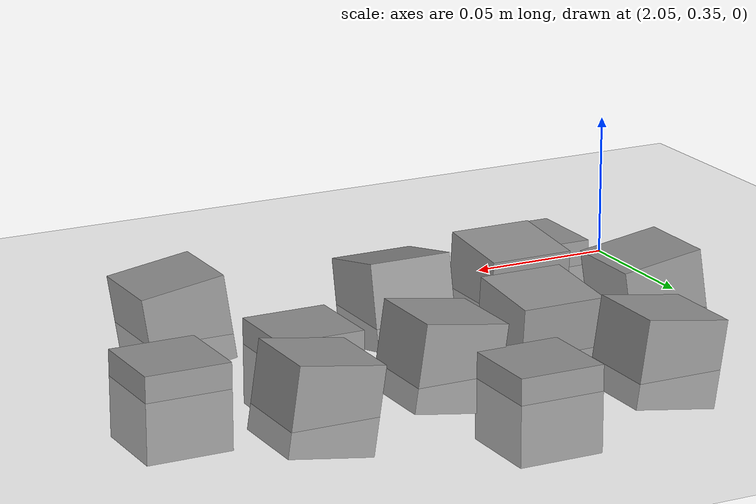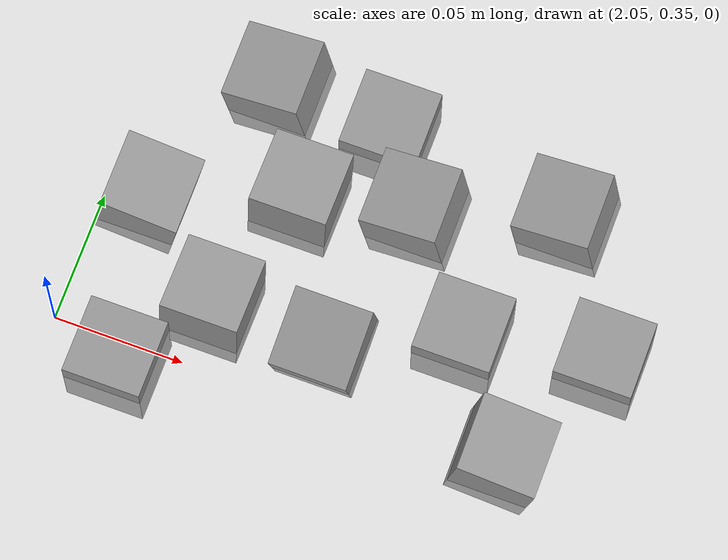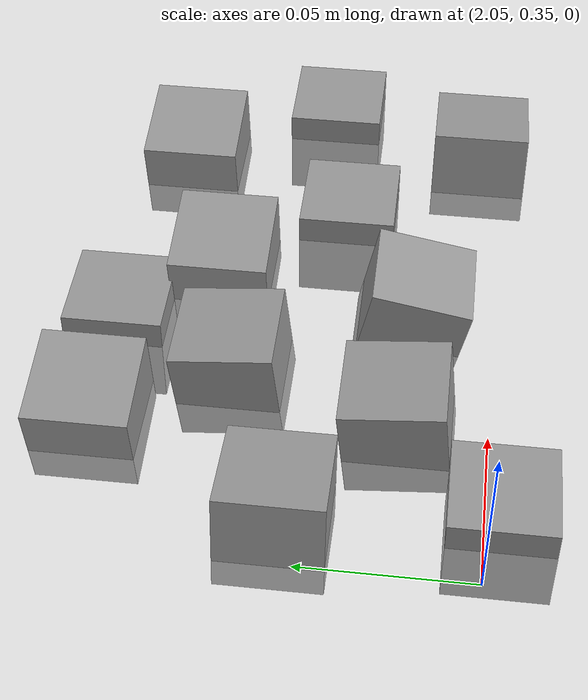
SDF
<sdf version="1.7">
 <world name="default">
  <model name="ground_plane">
   <static>1</static>
   <link name="link">
    <collision name="collision">
     <geometry><plane><normal>0 0 1</normal><size>100 100</size></plane></geometry>
     <surface><friction><ode><mu>100</mu><mu2>50</mu2></ode></friction></surface>
    </collision>
    <visual name="visual">
     <cast_shadows>0</cast_shadows>
     <geometry><plane><normal>0 0 1</normal><size>100 100</size></plane></geometry>
     <material>
      <script><uri>file://media/materials/scripts/gazebo.material</uri><name>Gazebo/Grey</name></script>
     </material>
    </visual>
   </link>
  </model>
  <model name="stone_road_3">
   <link name="link_0_clone_2_clone_1">
    <inertial>
     <mass>1</mass>
     <inertia>
      <ixx>0.166667</ixx>
      <ixy>0</ixy>
      <ixz>0</ixz>
      <iyy>0.166667</iyy>
      <iyz>0</iyz>
      <izz>0.166667</izz>
     </inertia>
    </inertial>
    <pose>0.041447 0.006316 0.003778 0 0.15 0</pose>
    <kinematic>1</kinematic>
    <visual name="visual">
     <geometry><box><size>0.03 0.03 0.03</size></box></geometry>
     <material>
      <lighting>1</lighting>
      <script><uri>file://media/materials/scripts/gazebo.material</uri><name>Gazebo/Grey</name></script>
      <shader type="pixel"><normal_map>__default__</normal_map></shader>
      <ambient>0.3 0.3 0.3 1</ambient>
      <diffuse>0.7 0.7 0.7 1</diffuse>
      <specular>0.01 0.01 0.01 1</specular>
      <emissive>0 0 0 1</emissive>
     </material>
    </visual>
    <collision name="collision">
     <geometry><box><size>0.03 0.03 0.03</size></box></geometry>
     <surface>
      <friction>
       <ode><mu>1</mu><mu2>1</mu2><fdir1>0 0 0</fdir1><slip1>0</slip1><slip2>0</slip2></ode>
       <torsional>
        <coefficient>1</coefficient>
        <patch_radius>0</patch_radius>
        <surface_radius>0</surface_radius>
        <use_patch_radius>1</use_patch_radius>
        <ode><slip>0</slip></ode>
       </torsional>
      </friction>
      <bounce><restitution_coefficient>0</restitution_coefficient><threshold>1e+06</threshold></bounce>
      <contact>
       <collide_without_contact>0</collide_without_contact>
       <collide_without_contact_bitmask>1</collide_without_contact_bitmask>
       <collide_bitmask>1</collide_bitmask>
       <ode>
        <soft_cfm>0</soft_cfm>
        <soft_erp>0.2</soft_erp>
        <kp>1e+13</kp>
        <kd>1</kd>
        <max_vel>0.01</max_vel>
        <min_depth>0</min_depth>
       </ode>
       <bullet>
        <split_impulse>1</split_impulse>
        <split_impulse_penetration_threshold>-0.01</split_impulse_penetration_threshold>
        <soft_cfm>0</soft_cfm>
        <soft_erp>0.2</soft_erp>
        <kp>1e+13</kp>
        <kd>1</kd>
       </bullet>
      </contact>
     </surface>
    </collision>
   </link>
   <link name="link_0_clone_2_clone_2_clone">
    <inertial>
     <mass>1</mass>
     <inertia>
      <ixx>0.166667</ixx>
      <ixy>0</ixy>
      <ixz>0</ixz>
      <iyy>0.166667</iyy>
      <iyz>0</iyz>
      <izz>0.166667</izz>
     </inertia>
    </inertial>
    <pose>0.189059 0.051135 0.003778 0 -0.15 0</pose>
    <kinematic>1</kinematic>
    <visual name="visual">
     <geometry><box><size>0.03 0.03 0.03</size></box></geometry>
     <material>
      <lighting>1</lighting>
      <script><uri>file://media/materials/scripts/gazebo.material</uri><name>Gazebo/Grey</name></script>
      <shader type="pixel"><normal_map>__default__</normal_map></shader>
      <ambient>0.3 0.3 0.3 1</ambient>
      <diffuse>0.7 0.7 0.7 1</diffuse>
      <specular>0.01 0.01 0.01 1</specular>
      <emissive>0 0 0 1</emissive>
     </material>
    </visual>
    <collision name="collision">
     <geometry><box><size>0.03 0.03 0.03</size></box></geometry>
     <surface>
      <friction>
       <ode><mu>1</mu><mu2>1</mu2><fdir1>0 0 0</fdir1><slip1>0</slip1><slip2>0</slip2></ode>
       <torsional>
        <coefficient>1</coefficient>
        <patch_radius>0</patch_radius>
        <surface_radius>0</surface_radius>
        <use_patch_radius>1</use_patch_radius>
        <ode><slip>0</slip></ode>
       </torsional>
      </friction>
      <bounce><restitution_coefficient>0</restitution_coefficient><threshold>1e+06</threshold></bounce>
      <contact>
       <collide_without_contact>0</collide_without_contact>
       <collide_without_contact_bitmask>1</collide_without_contact_bitmask>
       <collide_bitmask>1</collide_bitmask>
       <ode>
        <soft_cfm>0</soft_cfm>
        <soft_erp>0.2</soft_erp>
        <kp>1e+13</kp>
        <kd>1</kd>
        <max_vel>0.01</max_vel>
        <min_depth>0</min_depth>
       </ode>
       <bullet>
        <split_impulse>1</split_impulse>
        <split_impulse_penetration_threshold>-0.01</split_impulse_penetration_threshold>
        <soft_cfm>0</soft_cfm>
        <soft_erp>0.2</soft_erp>
        <kp>1e+13</kp>
        <kd>1</kd>
       </bullet>
      </contact>
     </surface>
    </collision>
   </link>
   <link name="link_0_clone_2_clone_2_clone_13_clone_clone_0">
    <inertial>
     <mass>1</mass>
     <inertia>
      <ixx>0.166667</ixx>
      <ixy>0</ixy>
      <ixz>0</ixz>
      <iyy>0.166667</iyy>
      <iyz>0</iyz>
      <izz>0.166667</izz>
     </inertia>
    </inertial>
    <pose>0.094072 0.02539 0.003778 -0.1 0 0</pose>
    <kinematic>1</kinematic>
    <visual name="visual">
     <geometry><box><size>0.03 0.03 0.03</size></box></geometry>
     <material>
      <lighting>1</lighting>
      <script><uri>file://media/materials/scripts/gazebo.material</uri><name>Gazebo/Grey</name></script>
      <shader type="pixel"><normal_map>__default__</normal_map></shader>
      <ambient>0.3 0.3 0.3 1</ambient>
      <diffuse>0.7 0.7 0.7 1</diffuse>
      <specular>0.01 0.01 0.01 1</specular>
      <emissive>0 0 0 1</emissive>
     </material>
    </visual>
    <collision name="collision">
     <geometry><box><size>0.03 0.03 0.03</size></box></geometry>
     <surface>
      <friction>
       <ode><mu>1</mu><mu2>1</mu2><fdir1>0 0 0</fdir1><slip1>0</slip1><slip2>0</slip2></ode>
       <torsional>
        <coefficient>1</coefficient>
        <patch_radius>0</patch_radius>
        <surface_radius>0</surface_radius>
        <use_patch_radius>1</use_patch_radius>
        <ode><slip>0</slip></ode>
       </torsional>
      </friction>
      <bounce><restitution_coefficient>0</restitution_coefficient><threshold>1e+06</threshold></bounce>
      <contact>
       <collide_without_contact>0</collide_without_contact>
       <collide_without_contact_bitmask>1</collide_without_contact_bitmask>
       <collide_bitmask>1</collide_bitmask>
       <ode>
        <soft_cfm>0</soft_cfm>
        <soft_erp>0.2</soft_erp>
        <kp>1e+13</kp>
        <kd>1</kd>
        <max_vel>0.01</max_vel>
        <min_depth>0</min_depth>
       </ode>
       <bullet>
        <split_impulse>1</split_impulse>
        <split_impulse_penetration_threshold>-0.01</split_impulse_penetration_threshold>
        <soft_cfm>0</soft_cfm>
        <soft_erp>0.2</soft_erp>
        <kp>1e+13</kp>
        <kd>1</kd>
       </bullet>
      </contact>
     </surface>
    </collision>
   </link>
   <link name="link_0_clone_2_clone_2_clone_13_clone_clone_16_clone_13">
    <inertial>
     <mass>1</mass>
     <inertia>
      <ixx>0.166667</ixx>
      <ixy>0</ixy>
      <ixz>0</ixz>
      <iyy>0.166667</iyy>
      <iyz>0</iyz>
      <izz>0.166667</izz>
     </inertia>
    </inertial>
    <pose>0.168013 -0.00203 -0.006222 0 -0 0</pose>
    <kinematic>1</kinematic>
    <visual name="visual">
     <geometry><box><size>0.03 0.03 0.03</size></box></geometry>
     <material>
      <lighting>1</lighting>
      <script><uri>file://media/materials/scripts/gazebo.material</uri><name>Gazebo/Grey</name></script>
      <shader type="pixel"><normal_map>__default__</normal_map></shader>
      <ambient>0.3 0.3 0.3 1</ambient>
      <diffuse>0.7 0.7 0.7 1</diffuse>
      <specular>0.01 0.01 0.01 1</specular>
      <emissive>0 0 0 1</emissive>
     </material>
    </visual>
    <collision name="collision">
     <geometry><box><size>0.03 0.03 0.03</size></box></geometry>
     <surface>
      <friction>
       <ode><mu>1</mu><mu2>1</mu2><fdir1>0 0 0</fdir1><slip1>0</slip1><slip2>0</slip2></ode>
       <torsional>
        <coefficient>1</coefficient>
        <patch_radius>0</patch_radius>
        <surface_radius>0</surface_radius>
        <use_patch_radius>1</use_patch_radius>
        <ode><slip>0</slip></ode>
       </torsional>
      </friction>
      <bounce><restitution_coefficient>0</restitution_coefficient><threshold>1e+06</threshold></bounce>
      <contact>
       <collide_without_contact>0</collide_without_contact>
       <collide_without_contact_bitmask>1</collide_without_contact_bitmask>
       <collide_bitmask>1</collide_bitmask>
       <ode>
        <soft_cfm>0</soft_cfm>
        <soft_erp>0.2</soft_erp>
        <kp>1e+13</kp>
        <kd>1</kd>
        <max_vel>0.01</max_vel>
        <min_depth>0</min_depth>
       </ode>
       <bullet>
        <split_impulse>1</split_impulse>
        <split_impulse_penetration_threshold>-0.01</split_impulse_penetration_threshold>
        <soft_cfm>0</soft_cfm>
        <soft_erp>0.2</soft_erp>
        <kp>1e+13</kp>
        <kd>1</kd>
       </bullet>
      </contact>
     </surface>
    </collision>
   </link>
   <link name="link_0_clone_2_clone_2_clone_13_clone_clone_16_clone_14">
    <inertial>
     <mass>1</mass>
     <inertia>
      <ixx>0.166667</ixx>
      <ixy>0</ixy>
      <ixz>0</ixz>
      <iyy>0.166667</iyy>
      <iyz>0</iyz>
      <izz>0.166667</izz>
     </inertia>
    </inertial>
    <pose>0.051911 -0.054424 -0.006222 0 -0 0</pose>
    <kinematic>1</kinematic>
    <visual name="visual">
     <geometry><box><size>0.03 0.03 0.03</size></box></geometry>
     <material>
      <lighting>1</lighting>
      <script><uri>file://media/materials/scripts/gazebo.material</uri><name>Gazebo/Grey</name></script>
      <shader type="pixel"><normal_map>__default__</normal_map></shader>
      <ambient>0.3 0.3 0.3 1</ambient>
      <diffuse>0.7 0.7 0.7 1</diffuse>
      <specular>0.01 0.01 0.01 1</specular>
      <emissive>0 0 0 1</emissive>
     </material>
    </visual>
    <collision name="collision">
     <geometry><box><size>0.03 0.03 0.03</size></box></geometry>
     <surface>
      <friction>
       <ode><mu>1</mu><mu2>1</mu2><fdir1>0 0 0</fdir1><slip1>0</slip1><slip2>0</slip2></ode>
       <torsional>
        <coefficient>1</coefficient>
        <patch_radius>0</patch_radius>
        <surface_radius>0</surface_radius>
        <use_patch_radius>1</use_patch_radius>
        <ode><slip>0</slip></ode>
       </torsional>
      </friction>
      <bounce><restitution_coefficient>0</restitution_coefficient><threshold>1e+06</threshold></bounce>
      <contact>
       <collide_without_contact>0</collide_without_contact>
       <collide_without_contact_bitmask>1</collide_without_contact_bitmask>
       <collide_bitmask>1</collide_bitmask>
       <ode>
        <soft_cfm>0</soft_cfm>
        <soft_erp>0.2</soft_erp>
        <kp>1e+13</kp>
        <kd>1</kd>
        <max_vel>0.01</max_vel>
        <min_depth>0</min_depth>
       </ode>
       <bullet>
        <split_impulse>1</split_impulse>
        <split_impulse_penetration_threshold>-0.01</split_impulse_penetration_threshold>
        <soft_cfm>0</soft_cfm>
        <soft_erp>0.2</soft_erp>
        <kp>1e+13</kp>
        <kd>1</kd>
       </bullet>
      </contact>
     </surface>
    </collision>
   </link>
   <link name="link_0_clone_2_clone_2_clone_13_clone_clone_16_clone_19">
    <inertial>
     <mass>1</mass>
     <inertia>
      <ixx>0.166667</ixx>
      <ixy>0</ixy>
      <ixz>0</ixz>
      <iyy>0.166667</iyy>
      <iyz>0</iyz>
      <izz>0.166667</izz>
     </inertia>
    </inertial>
    <pose>0.219442 0.006622 -0.006222 0 -0 0</pose>
    <kinematic>1</kinematic>
    <visual name="visual">
     <geometry><box><size>0.03 0.03 0.03</size></box></geometry>
     <material>
      <lighting>1</lighting>
      <script><uri>file://media/materials/scripts/gazebo.material</uri><name>Gazebo/Grey</name></script>
      <shader type="pixel"><normal_map>__default__</normal_map></shader>
      <ambient>0.3 0.3 0.3 1</ambient>
      <diffuse>0.7 0.7 0.7 1</diffuse>
      <specular>0.01 0.01 0.01 1</specular>
      <emissive>0 0 0 1</emissive>
     </material>
    </visual>
    <collision name="collision">
     <geometry><box><size>0.03 0.03 0.03</size></box></geometry>
     <surface>
      <friction>
       <ode><mu>1</mu><mu2>1</mu2><fdir1>0 0 0</fdir1><slip1>0</slip1><slip2>0</slip2></ode>
       <torsional>
        <coefficient>1</coefficient>
        <patch_radius>0</patch_radius>
        <surface_radius>0</surface_radius>
        <use_patch_radius>1</use_patch_radius>
        <ode><slip>0</slip></ode>
       </torsional>
      </friction>
      <bounce><restitution_coefficient>0</restitution_coefficient><threshold>1e+06</threshold></bounce>
      <contact>
       <collide_without_contact>0</collide_without_contact>
       <collide_without_contact_bitmask>1</collide_without_contact_bitmask>
       <collide_bitmask>1</collide_bitmask>
       <ode>
        <soft_cfm>0</soft_cfm>
        <soft_erp>0.2</soft_erp>
        <kp>1e+13</kp>
        <kd>1</kd>
        <max_vel>0.01</max_vel>
        <min_depth>0</min_depth>
       </ode>
       <bullet>
        <split_impulse>1</split_impulse>
        <split_impulse_penetration_threshold>-0.01</split_impulse_penetration_threshold>
        <soft_cfm>0</soft_cfm>
        <soft_erp>0.2</soft_erp>
        <kp>1e+13</kp>
        <kd>1</kd>
       </bullet>
      </contact>
     </surface>
    </collision>
   </link>
   <link name="link_0_clone_2_clone_2_clone_13_clone_clone_16_clone_20">
    <inertial>
     <mass>1</mass>
     <inertia>
      <ixx>0.166667</ixx>
      <ixy>0</ixy>
      <ixz>0</ixz>
      <iyy>0.166667</iyy>
      <iyz>0</iyz>
      <izz>0.166667</izz>
     </inertia>
    </inertial>
    <pose>0.115763 0.063063 -0.006222 0 -0 0</pose>
    <kinematic>1</kinematic>
    <visual name="visual">
     <geometry><box><size>0.03 0.03 0.03</size></box></geometry>
     <material>
      <lighting>1</lighting>
      <script><uri>file://media/materials/scripts/gazebo.material</uri><name>Gazebo/Grey</name></script>
      <shader type="pixel"><normal_map>__default__</normal_map></shader>
      <ambient>0.3 0.3 0.3 1</ambient>
      <diffuse>0.7 0.7 0.7 1</diffuse>
      <specular>0.01 0.01 0.01 1</specular>
      <emissive>0 0 0 1</emissive>
     </material>
    </visual>
    <collision name="collision">
     <geometry><box><size>0.03 0.03 0.03</size></box></geometry>
     <surface>
      <friction>
       <ode><mu>1</mu><mu2>1</mu2><fdir1>0 0 0</fdir1><slip1>0</slip1><slip2>0</slip2></ode>
       <torsional>
        <coefficient>1</coefficient>
        <patch_radius>0</patch_radius>
        <surface_radius>0</surface_radius>
        <use_patch_radius>1</use_patch_radius>
        <ode><slip>0</slip></ode>
       </torsional>
      </friction>
      <bounce><restitution_coefficient>0</restitution_coefficient><threshold>1e+06</threshold></bounce>
      <contact>
       <collide_without_contact>0</collide_without_contact>
       <collide_without_contact_bitmask>1</collide_without_contact_bitmask>
       <collide_bitmask>1</collide_bitmask>
       <ode>
        <soft_cfm>0</soft_cfm>
        <soft_erp>0.2</soft_erp>
        <kp>1e+13</kp>
        <kd>1</kd>
        <max_vel>0.01</max_vel>
        <min_depth>0</min_depth>
       </ode>
       <bullet>
        <split_impulse>1</split_impulse>
        <split_impulse_penetration_threshold>-0.01</split_impulse_penetration_threshold>
        <soft_cfm>0</soft_cfm>
        <soft_erp>0.2</soft_erp>
        <kp>1e+13</kp>
        <kd>1</kd>
       </bullet>
      </contact>
     </surface>
    </collision>
   </link>
   <link name="link_0_clone_2_clone_2_clone_13_clone_clone_4">
    <inertial>
     <mass>1</mass>
     <inertia>
      <ixx>0.166667</ixx>
      <ixy>0</ixy>
      <ixz>0</ixz>
      <iyy>0.166667</iyy>
      <iyz>0</iyz>
      <izz>0.166667</izz>
     </inertia>
    </inertial>
    <pose>0.078198 -0.024053 0.003778 -0.1 0 0</pose>
    <kinematic>1</kinematic>
    <visual name="visual">
     <geometry><box><size>0.03 0.03 0.03</size></box></geometry>
     <material>
      <lighting>1</lighting>
      <script><uri>file://media/materials/scripts/gazebo.material</uri><name>Gazebo/Grey</name></script>
      <shader type="pixel"><normal_map>__default__</normal_map></shader>
      <ambient>0.3 0.3 0.3 1</ambient>
      <diffuse>0.7 0.7 0.7 1</diffuse>
      <specular>0.01 0.01 0.01 1</specular>
      <emissive>0 0 0 1</emissive>
     </material>
    </visual>
    <collision name="collision">
     <geometry><box><size>0.03 0.03 0.03</size></box></geometry>
     <surface>
      <friction>
       <ode><mu>1</mu><mu2>1</mu2><fdir1>0 0 0</fdir1><slip1>0</slip1><slip2>0</slip2></ode>
       <torsional>
        <coefficient>1</coefficient>
        <patch_radius>0</patch_radius>
        <surface_radius>0</surface_radius>
        <use_patch_radius>1</use_patch_radius>
        <ode><slip>0</slip></ode>
       </torsional>
      </friction>
      <bounce><restitution_coefficient>0</restitution_coefficient><threshold>1e+06</threshold></bounce>
      <contact>
       <collide_without_contact>0</collide_without_contact>
       <collide_without_contact_bitmask>1</collide_without_contact_bitmask>
       <collide_bitmask>1</collide_bitmask>
       <ode>
        <soft_cfm>0</soft_cfm>
        <soft_erp>0.2</soft_erp>
        <kp>1e+13</kp>
        <kd>1</kd>
        <max_vel>0.01</max_vel>
        <min_depth>0</min_depth>
       </ode>
       <bullet>
        <split_impulse>1</split_impulse>
        <split_impulse_penetration_threshold>-0.01</split_impulse_penetration_threshold>
        <soft_cfm>0</soft_cfm>
        <soft_erp>0.2</soft_erp>
        <kp>1e+13</kp>
        <kd>1</kd>
       </bullet>
      </contact>
     </surface>
    </collision>
   </link>
   <link name="link_0_clone_2_clone_2_clone_6">
    <inertial>
     <mass>1</mass>
     <inertia>
      <ixx>0.166667</ixx>
      <ixy>0</ixy>
      <ixz>0</ixz>
      <iyy>0.166667</iyy>
      <iyz>0</iyz>
      <izz>0.166667</izz>
     </inertia>
    </inertial>
    <pose>0.136141 0.034017 0.003778 0 -0.15 0</pose>
    <kinematic>1</kinematic>
    <visual name="visual">
     <geometry><box><size>0.03 0.03 0.03</size></box></geometry>
     <material>
      <lighting>1</lighting>
      <script><uri>file://media/materials/scripts/gazebo.material</uri><name>Gazebo/Grey</name></script>
      <shader type="pixel"><normal_map>__default__</normal_map></shader>
      <ambient>0.3 0.3 0.3 1</ambient>
      <diffuse>0.7 0.7 0.7 1</diffuse>
      <specular>0.01 0.01 0.01 1</specular>
      <emissive>0 0 0 1</emissive>
     </material>
    </visual>
    <collision name="collision">
     <geometry><box><size>0.03 0.03 0.03</size></box></geometry>
     <surface>
      <friction>
       <ode><mu>1</mu><mu2>1</mu2><fdir1>0 0 0</fdir1><slip1>0</slip1><slip2>0</slip2></ode>
       <torsional>
        <coefficient>1</coefficient>
        <patch_radius>0</patch_radius>
        <surface_radius>0</surface_radius>
        <use_patch_radius>1</use_patch_radius>
        <ode><slip>0</slip></ode>
       </torsional>
      </friction>
      <bounce><restitution_coefficient>0</restitution_coefficient><threshold>1e+06</threshold></bounce>
      <contact>
       <collide_without_contact>0</collide_without_contact>
       <collide_without_contact_bitmask>1</collide_without_contact_bitmask>
       <collide_bitmask>1</collide_bitmask>
       <ode>
        <soft_cfm>0</soft_cfm>
        <soft_erp>0.2</soft_erp>
        <kp>1e+13</kp>
        <kd>1</kd>
        <max_vel>0.01</max_vel>
        <min_depth>0</min_depth>
       </ode>
       <bullet>
        <split_impulse>1</split_impulse>
        <split_impulse_penetration_threshold>-0.01</split_impulse_penetration_threshold>
        <soft_cfm>0</soft_cfm>
        <soft_erp>0.2</soft_erp>
        <kp>1e+13</kp>
        <kd>1</kd>
       </bullet>
      </contact>
     </surface>
    </collision>
   </link>
   <link name="link_0_clone_2_clone_2_clone_9">
    <inertial>
     <mass>1</mass>
     <inertia>
      <ixx>0.166667</ixx>
      <ixy>0</ixy>
      <ixz>0</ixz>
      <iyy>0.166667</iyy>
      <iyz>0</iyz>
      <izz>0.166667</izz>
     </inertia>
    </inertial>
    <pose>0.071478 0.063212 0.003778 0 -0.15 0</pose>
    <kinematic>1</kinematic>
    <visual name="visual">
     <geometry><box><size>0.03 0.03 0.03</size></box></geometry>
     <material>
      <lighting>1</lighting>
      <script><uri>file://media/materials/scripts/gazebo.material</uri><name>Gazebo/Grey</name></script>
      <shader type="pixel"><normal_map>__default__</normal_map></shader>
      <ambient>0.3 0.3 0.3 1</ambient>
      <diffuse>0.7 0.7 0.7 1</diffuse>
      <specular>0.01 0.01 0.01 1</specular>
      <emissive>0 0 0 1</emissive>
     </material>
    </visual>
    <collision name="collision">
     <geometry><box><size>0.03 0.03 0.03</size></box></geometry>
     <surface>
      <friction>
       <ode><mu>1</mu><mu2>1</mu2><fdir1>0 0 0</fdir1><slip1>0</slip1><slip2>0</slip2></ode>
       <torsional>
        <coefficient>1</coefficient>
        <patch_radius>0</patch_radius>
        <surface_radius>0</surface_radius>
        <use_patch_radius>1</use_patch_radius>
        <ode><slip>0</slip></ode>
       </torsional>
      </friction>
      <bounce><restitution_coefficient>0</restitution_coefficient><threshold>1e+06</threshold></bounce>
      <contact>
       <collide_without_contact>0</collide_without_contact>
       <collide_without_contact_bitmask>1</collide_without_contact_bitmask>
       <collide_bitmask>1</collide_bitmask>
       <ode>
        <soft_cfm>0</soft_cfm>
        <soft_erp>0.2</soft_erp>
        <kp>1e+13</kp>
        <kd>1</kd>
        <max_vel>0.01</max_vel>
        <min_depth>0</min_depth>
       </ode>
       <bullet>
        <split_impulse>1</split_impulse>
        <split_impulse_penetration_threshold>-0.01</split_impulse_penetration_threshold>
        <soft_cfm>0</soft_cfm>
        <soft_erp>0.2</soft_erp>
        <kp>1e+13</kp>
        <kd>1</kd>
       </bullet>
      </contact>
     </surface>
    </collision>
   </link>
   <link name="link_0_clone_2_clone_8">
    <inertial>
     <mass>1</mass>
     <inertia>
      <ixx>0.166667</ixx>
      <ixy>0</ixy>
      <ixz>0</ixz>
      <iyy>0.166667</iyy>
      <iyz>0</iyz>
      <izz>0.166667</izz>
     </inertia>
    </inertial>
    <pose>0.197388 -0.042712 0.003778 0 0.15 0</pose>
    <kinematic>1</kinematic>
    <visual name="visual">
     <geometry><box><size>0.03 0.03 0.03</size></box></geometry>
     <material>
      <lighting>1</lighting>
      <script><uri>file://media/materials/scripts/gazebo.material</uri><name>Gazebo/Grey</name></script>
      <shader type="pixel"><normal_map>__default__</normal_map></shader>
      <ambient>0.3 0.3 0.3 1</ambient>
      <diffuse>0.7 0.7 0.7 1</diffuse>
      <specular>0.01 0.01 0.01 1</specular>
      <emissive>0 0 0 1</emissive>
     </material>
    </visual>
    <collision name="collision">
     <geometry><box><size>0.03 0.03 0.03</size></box></geometry>
     <surface>
      <friction>
       <ode><mu>1</mu><mu2>1</mu2><fdir1>0 0 0</fdir1><slip1>0</slip1><slip2>0</slip2></ode>
       <torsional>
        <coefficient>1</coefficient>
        <patch_radius>0</patch_radius>
        <surface_radius>0</surface_radius>
        <use_patch_radius>1</use_patch_radius>
        <ode><slip>0</slip></ode>
       </torsional>
      </friction>
      <bounce><restitution_coefficient>0</restitution_coefficient><threshold>1e+06</threshold></bounce>
      <contact>
       <collide_without_contact>0</collide_without_contact>
       <collide_without_contact_bitmask>1</collide_without_contact_bitmask>
       <collide_bitmask>1</collide_bitmask>
       <ode>
        <soft_cfm>0</soft_cfm>
        <soft_erp>0.2</soft_erp>
        <kp>1e+13</kp>
        <kd>1</kd>
        <max_vel>0.01</max_vel>
        <min_depth>0</min_depth>
       </ode>
       <bullet>
        <split_impulse>1</split_impulse>
        <split_impulse_penetration_threshold>-0.01</split_impulse_penetration_threshold>
        <soft_cfm>0</soft_cfm>
        <soft_erp>0.2</soft_erp>
        <kp>1e+13</kp>
        <kd>1</kd>
       </bullet>
      </contact>
     </surface>
    </collision>
   </link>
   <link name="link_0_clone_9">
    <inertial>
     <mass>1</mass>
     <inertia>
      <ixx>0.166667</ixx>
      <ixy>0</ixy>
      <ixz>0</ixz>
      <iyy>0.166667</iyy>
      <iyz>0</iyz>
      <izz>0.166667</izz>
     </inertia>
    </inertial>
    <pose>0.122173 -0.025452 0.003778 0.2 -0 0</pose>
    <kinematic>1</kinematic>
    <visual name="visual">
     <geometry><box><size>0.03 0.03 0.03</size></box></geometry>
     <material>
      <lighting>1</lighting>
      <script><uri>file://media/materials/scripts/gazebo.material</uri><name>Gazebo/Grey</name></script>
      <shader type="pixel"><normal_map>__default__</normal_map></shader>
      <ambient>0.3 0.3 0.3 1</ambient>
      <diffuse>0.7 0.7 0.7 1</diffuse>
      <specular>0.01 0.01 0.01 1</specular>
      <emissive>0 0 0 1</emissive>
     </material>
    </visual>
    <collision name="collision">
     <geometry><box><size>0.03 0.03 0.03</size></box></geometry>
     <surface>
      <friction>
       <ode><mu>1</mu><mu2>1</mu2><fdir1>0 0 0</fdir1><slip1>0</slip1><slip2>0</slip2></ode>
       <torsional>
        <coefficient>1</coefficient>
        <patch_radius>0</patch_radius>
        <surface_radius>0</surface_radius>
        <use_patch_radius>1</use_patch_radius>
        <ode><slip>0</slip></ode>
       </torsional>
      </friction>
      <bounce><restitution_coefficient>0</restitution_coefficient><threshold>1e+06</threshold></bounce>
      <contact>
       <collide_without_contact>0</collide_without_contact>
       <collide_without_contact_bitmask>1</collide_without_contact_bitmask>
       <collide_bitmask>1</collide_bitmask>
       <ode>
        <soft_cfm>0</soft_cfm>
        <soft_erp>0.2</soft_erp>
        <kp>1e+13</kp>
        <kd>1</kd>
        <max_vel>0.01</max_vel>
        <min_depth>0</min_depth>
       </ode>
       <bullet>
        <split_impulse>1</split_impulse>
        <split_impulse_penetration_threshold>-0.01</split_impulse_penetration_threshold>
        <soft_cfm>0</soft_cfm>
        <soft_erp>0.2</soft_erp>
        <kp>1e+13</kp>
        <kd>1</kd>
       </bullet>
      </contact>
     </surface>
    </collision>
   </link>
   <static>0</static>
   <pose>2.02404 0.399702 -0 0 -0 0</pose>
  </model>
 </world>
</sdf>
